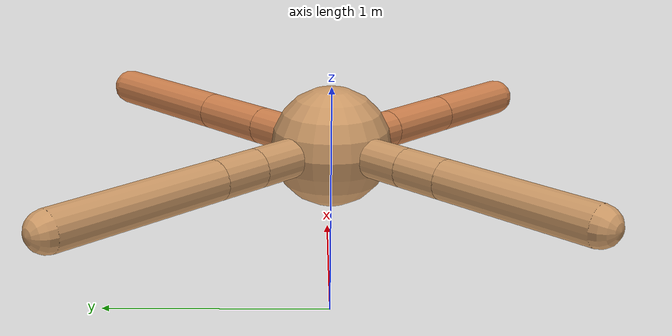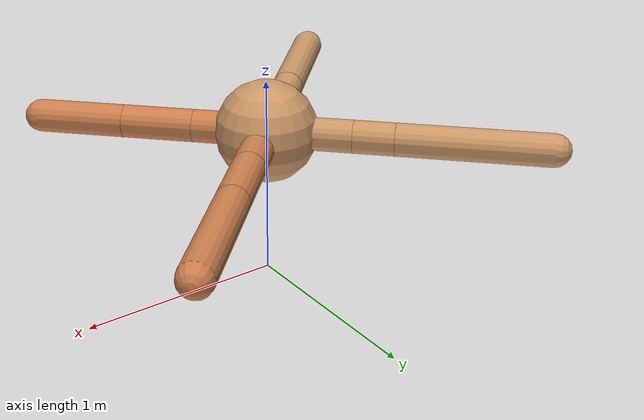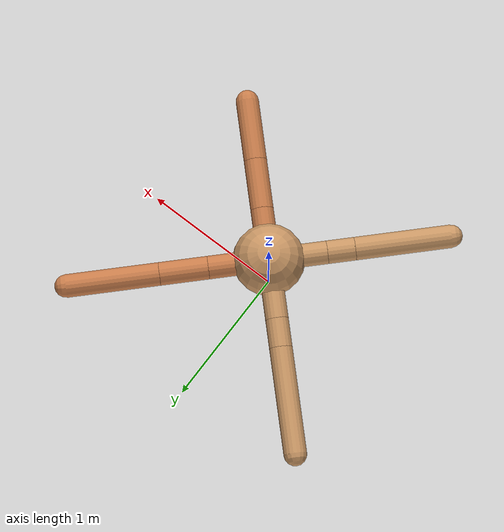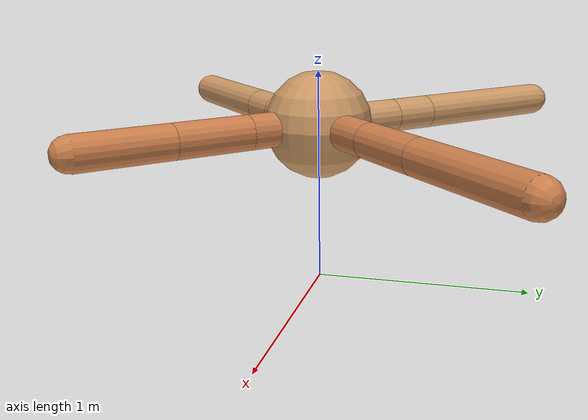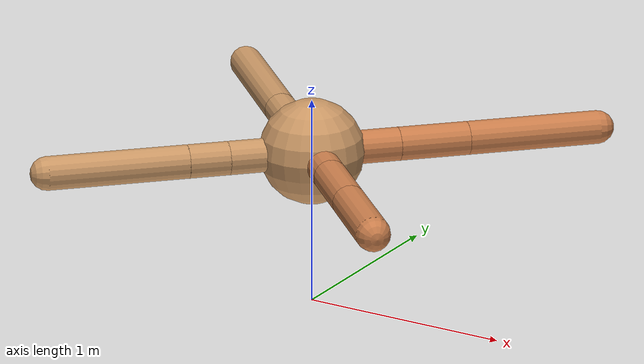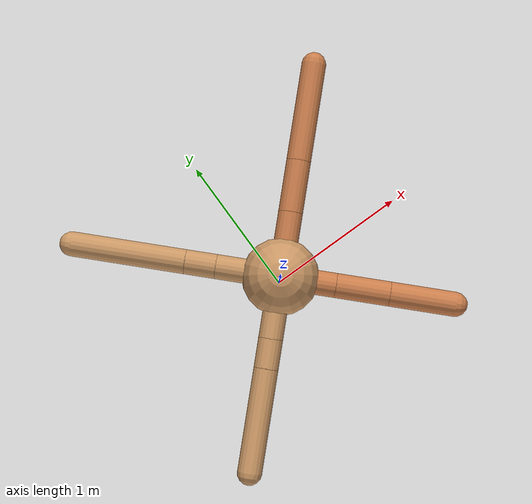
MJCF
<mujoco model="ant">
  <compiler angle="degree" coordinate="local" inertiafromgeom="true" />
  <option integrator="RK4" timestep="0.01" />
  <custom>
    <numeric data="0.0 0.0 0.55 1.0 0.0 0.0 0.0 0.0 1.0 0.0 -1.0 0.0 -1.0 0.0 1.0" name="init_qpos" />
  </custom>
  <default>
    <joint armature="1" damping="1" limited="true" />
    <geom conaffinity="0" condim="3" density="5.0" friction="1.5 0.1 0.1" margin="0.01" rgba="0.8 0.6 0.4 1" />
  </default>
  <worldbody>
    <body name="torso" pos="0 0 0.75">
      <geom name="torso_geom" pos="0 0 0" size="0.25" type="sphere" />

      <body name="front_left_leg" pos="0 0 0">
        <geom fromto="0.0 0.0 0.0 0.29597008237546574 0.29597008237546574 0.0" name="aux_1_geom" size="0.08" type="capsule" rgba=".8 .5 .3 1" />
        <body name="aux_1" pos="0.29597008237546574 0.29597008237546574 0.0">
          <joint axis="0 0 1" name="hip_1" pos="0.0 0.0 0.0" range="-40 40" type="hinge" />
          <geom fromto="0.0 0.0 0.0 0.2385501613259975 0.2385501613259975 0.0" name="left_leg_geom" size="0.08" type="capsule" rgba=".8 .5 .3 1" />
          <body pos="0.2385501613259975 0.2385501613259975 0.0" name="front_left_foot">
            <joint axis="-1 1 0" name="ankle_1" pos="0.0 0.0 0.0" range="30 100" type="hinge" />
            <geom fromto="0.0 0.0 0.0 0.45420673225012564 0.45420673225012564 0.0" name="left_ankle_geom" size="0.08" type="capsule" rgba=".8 .5 .3 1" />
          </body>
        </body>
      </body>
      <body name="front_right_leg" pos="0 0 0">
        <geom fromto="0.0 0.0 0.0 -0.29651039995440115 0.29651039995440115 0.0" name="aux_2_geom" size="0.08" type="capsule" />
        <body name="aux_2" pos="-0.29651039995440115 0.29651039995440115 0.0">
          <joint axis="0 0 1" name="hip_2" pos="0.0 0.0 0.0" range="-40 40" type="hinge" />
          <geom fromto="0.0 0.0 0.0 -0.14134748797402663 0.14134748797402663 0.0" name="right_leg_geom" size="0.08" type="capsule" />
          <body pos="-0.14134748797402663 0.14134748797402663 0.0" name="front_right_foot">
            <joint axis="1 1 0" name="ankle_2" pos="0.0 0.0 0.0" range="-100 -30" type="hinge" />
            <geom fromto="0.0 0.0 0.0 -0.5212607915605431 0.5212607915605431 0.0" name="right_ankle_geom" size="0.08" type="capsule" />
          </body>
        </body>
      </body>
      <body name="left_back_leg" pos="0 0 0">
        <geom fromto="0.0 0.0 0.0 -0.28460461496576234 -0.28460461496576234 0.0" name="aux_3_geom" size="0.08" type="capsule" />
        <body name="aux_3" pos="-0.28460461496576234 -0.28460461496576234 0.0">
          <joint axis="0 0 1" name="hip_3" pos="0.0 0.0 0.0" range="-40 40" type="hinge" />
          <geom fromto="0.0 0.0 0.0 -0.13652126127027595 -0.13652126127027595 0.0" name="back_leg_geom" size="0.08" type="capsule" />
          <body pos="-0.13652126127027595 -0.13652126127027595 0.0" name="left_back_foot">
            <joint axis="-1 1 0" name="ankle_3" pos="0.0 0.0 0.0" range="-100 -30" type="hinge" />
            <geom fromto="0.0 0.0 0.0 -0.4703953578604207 -0.4703953578604207 0.0" name="third_ankle_geom" size="0.08" type="capsule" />
          </body>
        </body>
      </body>
      <body name="right_back_leg" pos="0 0 0">
        <geom fromto="0.0 0.0 0.0 0.2523098847684375 -0.2523098847684375 0.0" name="aux_4_geom" size="0.08" type="capsule" rgba=".8 .5 .3 1" />
        <body name="aux_4" pos="0.2523098847684375 -0.2523098847684375 0.0">
          <joint axis="0 0 1" name="hip_4" pos="0.0 0.0 0.0" range="-40 40" type="hinge" />
          <geom fromto="0.0 0.0 0.0 0.24665728774116974 -0.24665728774116974 0.0" name="rightback_leg_geom" size="0.08" type="capsule" rgba=".8 .5 .3 1" />
          <body pos="0.24665728774116974 -0.24665728774116974 0.0" name="right_back_foot">
            <joint axis="1 1 0" name="ankle_4" pos="0.0 0.0 0.0" range="30 100" type="hinge" />
            <geom fromto="0.0 0.0 0.0 0.30099595093647613 -0.30099595093647613 0.0" name="fourth_ankle_geom" size="0.08" type="capsule" rgba=".8 .5 .3 1" />
          </body>
        </body>
      </body>
    </body>
  </worldbody>
  <actuator>
    <motor ctrllimited="true" ctrlrange="-1.0 1.0" joint="hip_4" gear="150" />
    <motor ctrllimited="true" ctrlrange="-1.0 1.0" joint="ankle_4" gear="150" />
    <motor ctrllimited="true" ctrlrange="-1.0 1.0" joint="hip_1" gear="150" />
    <motor ctrllimited="true" ctrlrange="-1.0 1.0" joint="ankle_1" gear="150" />
    <motor ctrllimited="true" ctrlrange="-1.0 1.0" joint="hip_2" gear="150" />
    <motor ctrllimited="true" ctrlrange="-1.0 1.0" joint="ankle_2" gear="150" />
    <motor ctrllimited="true" ctrlrange="-1.0 1.0" joint="hip_3" gear="150" />
    <motor ctrllimited="true" ctrlrange="-1.0 1.0" joint="ankle_3" gear="150" />
  </actuator>
</mujoco>
